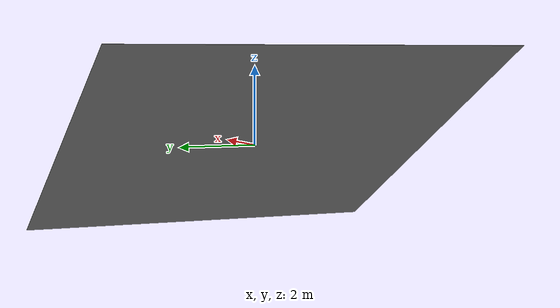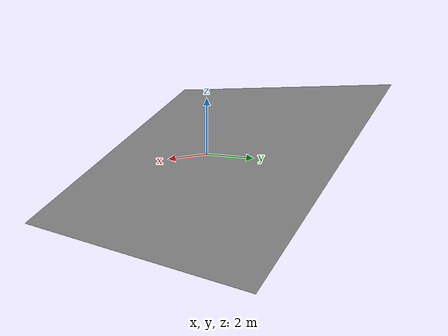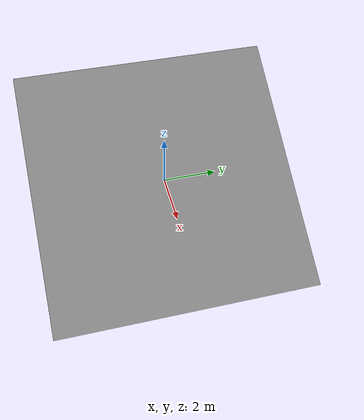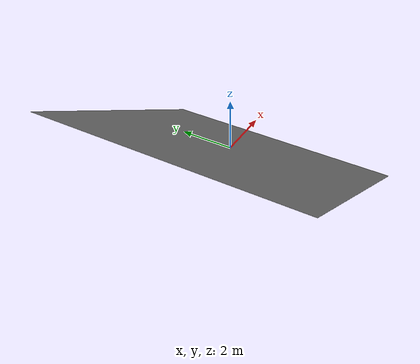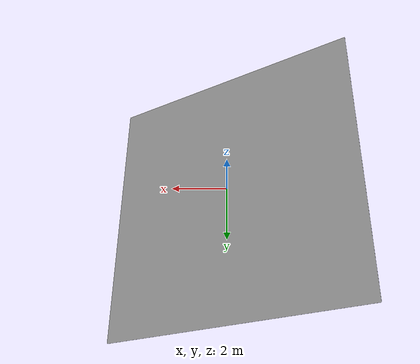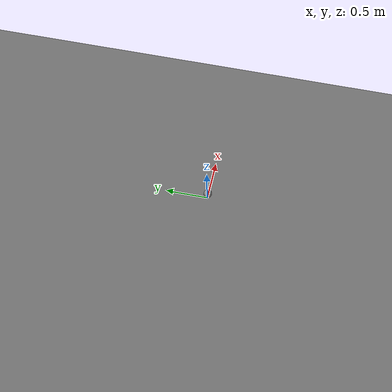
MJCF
<mujoco model="incline">
  <compiler angle="degree"/>
  <option timestep="0.001" integrator="implicitfast" cone="elliptic"/>
  <default>
    <geom friction="0.15 0.005 0.0001"/>
  </default>
  <worldbody>
    <light directional="true" diffuse="0.8 0.8 0.8" pos="0 0 5" dir="0 0 -1"/>
    <geom name="incline_surface" type="plane" size="5 5 0.1" euler="0 30.0 0"/>
    <body name="block" pos="0.030000 0 0.051962" euler="0 30.0 0">
      <joint name="slide_down" type="slide" axis="1 0 0" damping="0"/>
      <joint name="slide_normal" type="slide" axis="0 0 1" damping="2.0"/>
      <geom name="block_geom" type="sphere" size="0.05" mass="1.0"/>
    </body>
  </worldbody>
</mujoco>
